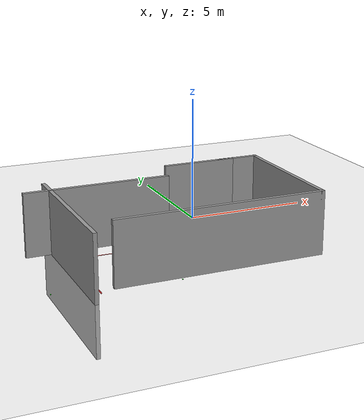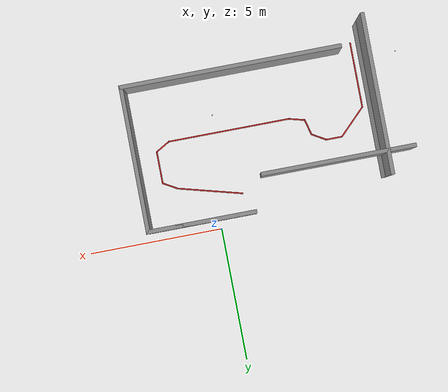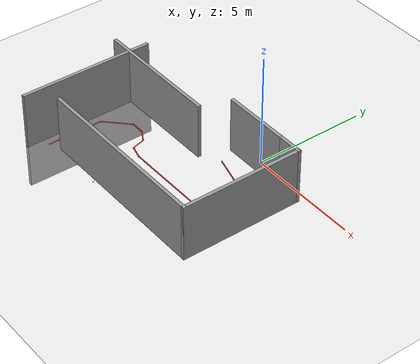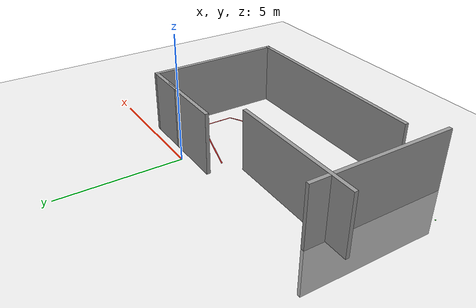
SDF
<sdf version="1.7">
 <world name="my_world">
  <light name="sun" type="directional">
   <pose>0 0 10 0 -0 0</pose>
   <diffuse>0.8 0.8 0.8 1</diffuse>
   <specular>0.2 0.2 0.2 1</specular>
   <attenuation>
    <range>1000</range>
    <constant>0.9</constant>
    <linear>0.01</linear>
    <quadratic>0.001</quadratic>
   </attenuation>
   <direction>-0.5 0.1 -0.9</direction>
   <spot><inner_angle>0</inner_angle><outer_angle>0</outer_angle><falloff>0</falloff></spot>
  </light>
  <model name="ground_plane">
   <static>1</static>
   <link name="link">
    <collision name="collision">
     <geometry><plane><normal>0 0 1</normal><size>100 100</size></plane></geometry>
     <surface>
      <contact><collide_bitmask>65535</collide_bitmask></contact>
      <friction><ode><mu>100</mu><mu2>50</mu2></ode></friction>
     </surface>
    </collision>
    <visual name="visual">
     <cast_shadows>0</cast_shadows>
     <geometry><plane><normal>0 0 1</normal><size>100 100</size></plane></geometry>
     <material>
      <script><uri>file://media/materials/scripts/gazebo.material</uri><name>Gazebo/Grey</name></script>
     </material>
    </visual>
   </link>
  </model>
  <gravity>0 0 -9.8</gravity>
  <magnetic_field>6e-06 2.3e-05 -4.2e-05</magnetic_field>
  <atmosphere type="adiabatic"/>
  <physics type="ode">
   <max_step_size>0.001</max_step_size>
   <real_time_factor>1</real_time_factor>
   <real_time_update_rate>1000</real_time_update_rate>
  </physics>
  <scene><ambient>0.4 0.4 0.4 1</ambient><background>0.7 0.7 0.7 1</background><shadows>1</shadows></scene>
  <spherical_coordinates>
   <surface_model>EARTH_WGS84</surface_model>
   <latitude_deg>0</latitude_deg>
   <longitude_deg>0</longitude_deg>
   <elevation>0</elevation>
   <heading_deg>0</heading_deg>
  </spherical_coordinates>
  <model name="maze">
   <pose>-1.92834 -2.29914 0 0 -0 0</pose>
   <link name="Wall_1">
    <collision name="Wall_1_Collision">
     <geometry><box><size>8.25 0.15 2.5</size></box></geometry>
     <pose>0 0 1.25 0 -0 0</pose>
    </collision>
    <visual name="Wall_1_Visual">
     <pose>0 0 1.25 0 -0 0</pose>
     <geometry><box><size>8.25 0.15 2.5</size></box></geometry>
     <material>
      <script><uri>file://media/materials/scripts/gazebo.material</uri><name>Gazebo/Grey</name></script>
      <ambient>1 1 1 1</ambient>
     </material>
     <meta><layer>0</layer></meta>
    </visual>
    <pose>0.515408 -3.4419 0 0 -0 0</pose>
   </link>
   <link name="Wall_2">
    <collision name="Wall_2_Collision">
     <geometry><box><size>5.5 0.15 2.5</size></box></geometry>
     <pose>0 0 1.25 0 -0 0</pose>
    </collision>
    <visual name="Wall_2_Visual">
     <pose>0 0 1.25 0 -0 0</pose>
     <geometry><box><size>5.5 0.15 2.5</size></box></geometry>
     <material>
      <script><uri>file://media/materials/scripts/gazebo.material</uri><name>Gazebo/Grey</name></script>
      <ambient>1 1 1 1</ambient>
     </material>
     <meta><layer>0</layer></meta>
    </visual>
    <pose>4.56541 -0.766899 0 0 -0 1.5708</pose>
   </link>
   <link name="Wall_3">
    <collision name="Wall_3_Collision">
     <geometry><box><size>1.75 0.15 2.5</size></box></geometry>
     <pose>0 0 1.25 0 -0 0</pose>
    </collision>
    <visual name="Wall_3_Visual">
     <pose>0 0 1.25 0 -0 0</pose>
     <geometry><box><size>1.75 0.15 2.5</size></box></geometry>
     <material>
      <script><uri>file://media/materials/scripts/gazebo.material</uri><name>Gazebo/Grey</name></script>
      <ambient>1 1 1 1</ambient>
     </material>
     <meta><layer>0</layer></meta>
    </visual>
    <pose>3.76541 1.9081 0 0 -0 3.14159</pose>
   </link>
   <link name="Wall_6">
    <collision name="Wall_6_Collision">
     <geometry><box><size>6 0.15 2.5</size></box></geometry>
     <pose>0 0 1.25 0 -0 0</pose>
    </collision>
    <visual name="Wall_6_Visual">
     <pose>-1.5 0 0.25 0 -0 0</pose>
     <geometry><box><size>6 0.15 4.5</size></box></geometry>
     <material>
      <script><uri>file://media/materials/scripts/gazebo.material</uri><name>Gazebo/Grey</name></script>
      <ambient>1 1 1 1</ambient>
     </material>
     <meta><layer>0</layer></meta>
    </visual>
    <pose>-4.56541 0.016899 0 0 -0 1.5708</pose>
   </link>
   <link name="Wall_8">
    <collision name="Wall_8_Collision">
     <geometry><box><size>6 0.15 2.5</size></box></geometry>
     <pose>0 0 1.25 0 -0 0</pose>
    </collision>
    <visual name="Wall_8_Visual">
     <pose>-2 0 1.25 0 -0 0</pose>
     <geometry><box><size>3 0.15 2.5</size></box></geometry>
     <material>
      <script><uri>file://media/materials/scripts/gazebo.material</uri><name>Gazebo/Grey</name></script>
      <ambient>1 1 1 1</ambient>
     </material>
     <meta><layer>0</layer></meta>
    </visual>
    <pose>0.040408 1.9081 0 0 -0 3.14159</pose>
   </link>
   <link name="Wall_9">
    <collision name="Wall_9_Collision">
     <geometry><box><size>5.75 0.15 2.5</size></box></geometry>
     <pose>0 0 1.25 0 -0 0</pose>
    </collision>
    <visual name="Wall_9_Visual">
     <pose>0 0 1.25 0 -0 0</pose>
     <geometry><box><size>5.75 0.15 2.5</size></box></geometry>
     <material>
      <script><uri>file://media/materials/scripts/gazebo.material</uri><name>Gazebo/Grey</name></script>
      <ambient>1 1 1 1</ambient>
     </material>
     <meta><layer>0</layer></meta>
    </visual>
    <pose>-2.73161 0.613768 0 0 -0 0</pose>
   </link>
   <static>1</static>
  </model>
  <model name="path">
   <pose>-2.09113 -2.32847 0 0 -0 0</pose>
   <link name="Line_11">
    <collision name="Line_11_Collision">
     <geometry><plane><normal>0 0 1</normal><size>0.05 2.5</size></plane></geometry>
     <pose>0 0 0.0015 0 -0 0</pose>
     <surface><friction><ode><mu>100</mu><mu2>50</mu2></ode></friction></surface>
    </collision>
    <visual name="Line_11_Visual">
     <pose>0 0 0.0015 0 -0 0</pose>
     <geometry><box><size>2.5 0.05 0.001</size></box></geometry>
     <material>
      <script><uri>file://media/materials/scripts/gazebo.material</uri><name>Gazebo/Red</name></script>
     </material>
     <meta><layer>0</layer></meta>
    </visual>
    <pose>-3.96386 -2.42451 0 0 -0 -1.5708</pose>
   </link>
   <link name="Line_13">
    <collision name="Line_13_Collision">
     <geometry><plane><normal>0 0 1</normal><size>0.05 1.40411</size></plane></geometry>
     <pose>0 0 0.0005 0 -0 0</pose>
     <surface><friction><ode><mu>100</mu><mu2>50</mu2></ode></friction></surface>
    </collision>
    <visual name="Line_13_Visual">
     <pose>0 0 0.0005 0 -0 0</pose>
     <geometry><box><size>1.40411 0.05 0.001</size></box></geometry>
     <material>
      <script><uri>file://media/materials/scripts/gazebo.material</uri><name>Gazebo/Red</name></script>
     </material>
     <meta><layer>0</layer></meta>
    </visual>
    <pose>-3.48386 -0.722009 0 0 -0 0.782787</pose>
   </link>
   <link name="Line_14">
    <collision name="Line_14_Collision">
     <geometry><plane><normal>0 0 1</normal><size>0.05 0.65</size></plane></geometry>
     <pose>0 0 0.0005 0 -0 0</pose>
     <surface><friction><ode><mu>100</mu><mu2>50</mu2></ode></friction></surface>
    </collision>
    <visual name="Line_14_Visual">
     <pose>0 0 0.0005 0 -0 0</pose>
     <geometry><box><size>0.65 0.05 0.001</size></box></geometry>
     <material>
      <script><uri>file://media/materials/scripts/gazebo.material</uri><name>Gazebo/Red</name></script>
     </material>
     <meta><layer>0</layer></meta>
    </visual>
    <pose>-2.70386 -0.244509 0 0 -0 0</pose>
   </link>
   <link name="Line_20">
    <collision name="Line_20_Collision">
     <geometry><plane><normal>0 0 1</normal><size>0.05 0.645529</size></plane></geometry>
     <pose>0 0 0.0005 0 -0 0</pose>
     <surface><friction><ode><mu>100</mu><mu2>50</mu2></ode></friction></surface>
    </collision>
    <visual name="Line_20_Visual">
     <pose>0 0 0.0005 0 -0 0</pose>
     <geometry><box><size>0.645529 0.05 0.001</size></box></geometry>
     <material>
      <script><uri>file://media/materials/scripts/gazebo.material</uri><name>Gazebo/Red</name></script>
     </material>
     <meta><layer>0</layer></meta>
    </visual>
    <pose>-2.14686 -0.394509 0 0 -0 -0.528316</pose>
   </link>
   <link name="Line_21">
    <collision name="Line_21_Collision">
     <geometry><plane><normal>0 0 1</normal><size>0.05 0.650446</size></plane></geometry>
     <pose>0 0 0.0005 0 -0 0</pose>
     <surface><friction><ode><mu>100</mu><mu2>50</mu2></ode></friction></surface>
    </collision>
    <visual name="Line_21_Visual">
     <pose>0 0 0.0005 0 -0 0</pose>
     <geometry><box><size>0.650446 0.05 0.001</size></box></geometry>
     <material>
      <script><uri>file://media/materials/scripts/gazebo.material</uri><name>Gazebo/Red</name></script>
     </material>
     <meta><layer>0</layer></meta>
    </visual>
    <pose>-1.81186 -0.834509 0 0 -0 -1.30805</pose>
   </link>
   <link name="Line_22">
    <collision name="Line_22_Collision">
     <geometry><plane><normal>0 0 1</normal><size>0.05 0.649508</size></plane></geometry>
     <pose>0 0 0.0005 0 -0 0</pose>
     <surface><friction><ode><mu>100</mu><mu2>50</mu2></ode></friction></surface>
    </collision>
    <visual name="Line_22_Visual">
     <pose>0 0 0.0005 0 -0 0</pose>
     <geometry><box><size>0.649508 0.05 0.001</size></box></geometry>
     <material>
      <script><uri>file://media/materials/scripts/gazebo.material</uri><name>Gazebo/Red</name></script>
     </material>
     <meta><layer>0</layer></meta>
    </visual>
    <pose>-1.44436 -1.20201 0 0 -0 -0.26157</pose>
   </link>
   <link name="Line_23">
    <collision name="Line_23_Collision">
     <geometry><plane><normal>0 0 1</normal><size>0.05 4.65006</size></plane></geometry>
     <pose>0 0 0.0005 0 -0 0</pose>
     <surface><friction><ode><mu>100</mu><mu2>50</mu2></ode></friction></surface>
    </collision>
    <visual name="Line_23_Visual">
     <pose>0 0 0.0005 0 -0 0</pose>
     <geometry><box><size>4.65006 0.05 0.001</size></box></geometry>
     <material>
      <script><uri>file://media/materials/scripts/gazebo.material</uri><name>Gazebo/Red</name></script>
     </material>
     <meta><layer>0</layer></meta>
    </visual>
    <pose>1.14514 -1.27951 0 0 -0 0</pose>
   </link>
   <link name="Line_24">
    <collision name="Line_24_Collision">
     <geometry><plane><normal>0 0 1</normal><size>0.05 0.649922</size></plane></geometry>
     <pose>0 0 0.0005 0 -0 0</pose>
     <surface><friction><ode><mu>100</mu><mu2>50</mu2></ode></friction></surface>
    </collision>
    <visual name="Line_24_Visual">
     <pose>0 0 0.0005 0 -0 0</pose>
     <geometry><box><size>0.649922 0.05 0.001</size></box></geometry>
     <material>
      <script><uri>file://media/materials/scripts/gazebo.material</uri><name>Gazebo/Red</name></script>
     </material>
     <meta><layer>0</layer></meta>
    </visual>
    <pose>3.70514 -1.12951 0 0 -0 0.523278</pose>
   </link>
   <link name="Line_25">
    <collision name="Line_25_Collision">
     <geometry><plane><normal>0 0 1</normal><size>0.05 0.399747</size></plane></geometry>
     <pose>0 0 0.0005 0 -0 0</pose>
     <surface><friction><ode><mu>100</mu><mu2>50</mu2></ode></friction></surface>
    </collision>
    <visual name="Line_25_Visual">
     <pose>0 0 0.0005 0 -0 0</pose>
     <geometry><box><size>0.399747 0.05 0.001</size></box></geometry>
     <material>
      <script><uri>file://media/materials/scripts/gazebo.material</uri><name>Gazebo/Red</name></script>
     </material>
     <meta><layer>0</layer></meta>
    </visual>
    <pose>3.96514 -0.804509 0 0 -0 1.5708</pose>
   </link>
   <link name="Line_26">
    <collision name="Line_26_Collision">
     <geometry><plane><normal>0 0 1</normal><size>0.05 0.899747</size></plane></geometry>
     <pose>0 0 0.0005 0 -0 0</pose>
     <surface><friction><ode><mu>100</mu><mu2>50</mu2></ode></friction></surface>
    </collision>
    <visual name="Line_26_Visual">
     <pose>0 0 0.0005 0 -0 0</pose>
     <geometry><box><size>0.899747 0.05 0.001</size></box></geometry>
     <material>
      <script><uri>file://media/materials/scripts/gazebo.material</uri><name>Gazebo/Red</name></script>
     </material>
     <meta><layer>0</layer></meta>
    </visual>
    <pose>3.96514 -0.204509 0 0 -0 1.5708</pose>
   </link>
   <link name="Line_27">
    <collision name="Line_27_Collision">
     <geometry><plane><normal>0 0 1</normal><size>0.05 0.650158</size></plane></geometry>
     <pose>0 0 0.0005 0 -0 0</pose>
     <surface><friction><ode><mu>100</mu><mu2>50</mu2></ode></friction></surface>
    </collision>
    <visual name="Line_27_Visual">
     <pose>0 0 0.0005 0 -0 0</pose>
     <geometry><box><size>0.650158 0.05 0.001</size></box></geometry>
     <material>
      <script><uri>file://media/materials/scripts/gazebo.material</uri><name>Gazebo/Red</name></script>
     </material>
     <meta><layer>0</layer></meta>
    </visual>
    <pose>3.70514 0.370491 0 0 -0 2.61831</pose>
   </link>
   <link name="Line_28">
    <collision name="Line_28_Collision">
     <geometry><plane><normal>0 0 1</normal><size>0.05 1.89988</size></plane></geometry>
     <pose>0 0 0.0005 0 -0 0</pose>
     <surface><friction><ode><mu>100</mu><mu2>50</mu2></ode></friction></surface>
    </collision>
    <visual name="Line_28_Visual">
     <pose>0 0 0.0005 0 -0 0</pose>
     <geometry><box><size>1.89988 0.05 0.001</size></box></geometry>
     <material>
      <script><uri>file://media/materials/scripts/gazebo.material</uri><name>Gazebo/Red</name></script>
     </material>
     <meta><layer>0</layer></meta>
    </visual>
    <pose>2.55164 0.759991 0 0 -0 2.8797</pose>
   </link>
   <link name="Line_29">
    <collision name="Line_29_Collision">
     <geometry><plane><normal>0 0 1</normal><size>0.05 0.649797</size></plane></geometry>
     <pose>0 0 0.0005 0 -0 0</pose>
     <surface><friction><ode><mu>100</mu><mu2>50</mu2></ode></friction></surface>
    </collision>
    <visual name="Line_29_Visual">
     <pose>0 0 0.0005 0 -0 0</pose>
     <geometry><box><size>0.649797 0.05 0.001</size></box></geometry>
     <material>
      <script><uri>file://media/materials/scripts/gazebo.material</uri><name>Gazebo/Red</name></script>
     </material>
     <meta><layer>0</layer></meta>
    </visual>
    <pose>1.36864 1.07699 0 0 -0 2.88002</pose>
   </link>
   <link name="GreenPoint_1">
    <pose>1.65 -1.95 0.05 0 0 0</pose>
    <collision name="gp1_collision"><geometry><sphere><radius>0.0</radius></sphere></geometry></collision>
    <visual name="gp1_visual">
     <geometry><sphere><radius>0.02</radius></sphere></geometry>
     <material><ambient>0 1 0 1</ambient><diffuse>0 1 0 1</diffuse></material>
    </visual>
   </link>
   <link name="GreenPoint_2">
    <pose>-0.94599 -3.60798 0 0 0 0</pose>
    <collision name="gp2_collision"><geometry><sphere><radius>0.0</radius></sphere></geometry></collision>
    <visual name="gp2_visual">
     <geometry><sphere><radius>0.02</radius></sphere></geometry>
     <material><ambient>0 1 0 1</ambient><diffuse>0 1 0 1</diffuse></material>
    </visual>
   </link>
   <link name="GreenPoint_3">
    <pose>-5.57499 -3.05048 0 0 -0 0.782787</pose>
    <collision name="gp3_collision"><geometry><sphere><radius>0.00</radius></sphere></geometry></collision>
    <visual name="gp3_visual">
     <geometry><sphere><radius>0.02</radius></sphere></geometry>
     <material><ambient>0 1 0 1</ambient><diffuse>0 1 0 1</diffuse></material>
    </visual>
   </link>
   <static>1</static>
  </model>
  <audio><device>default</device></audio>
 </world>
</sdf>
